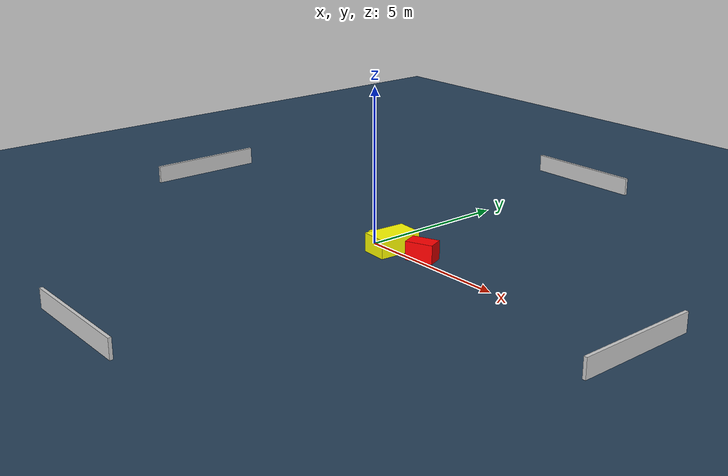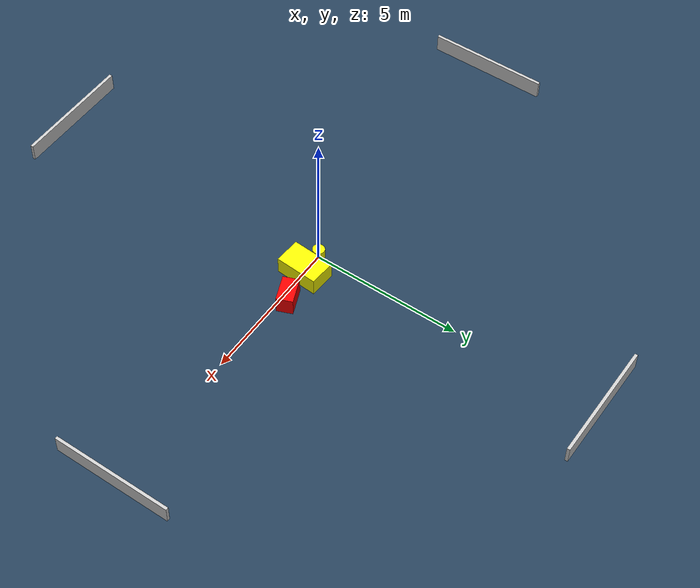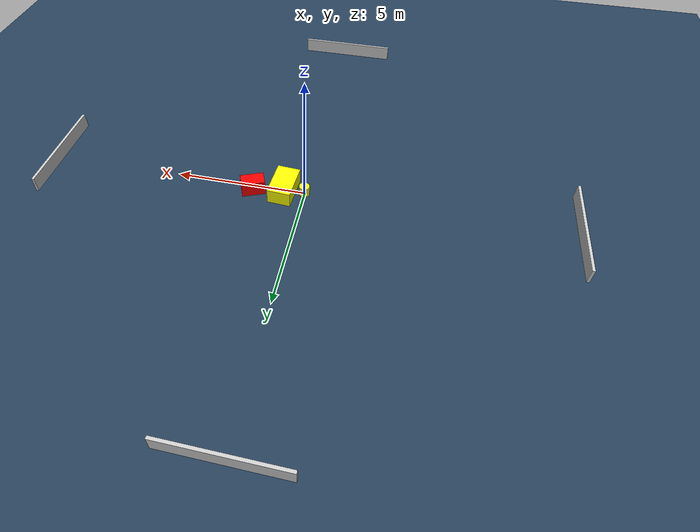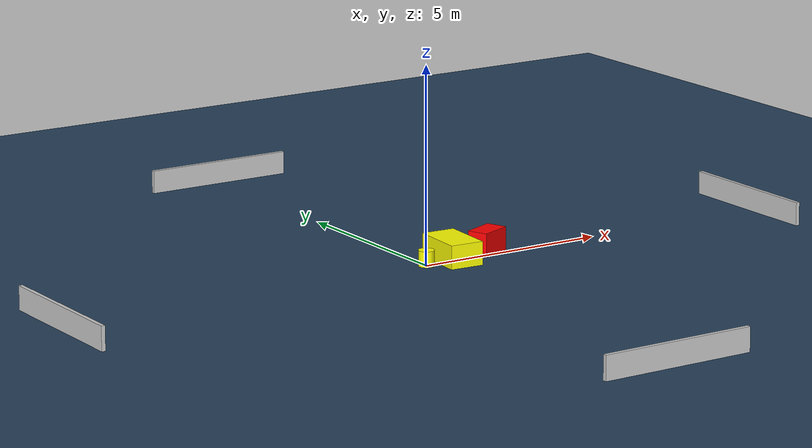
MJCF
<?xml version="1.0" ?>
<mujoco model="generated_environment">
  <option timestep="0.01" integrator="RK4" cone="elliptic"/>
  <default>
    <geom density="1"/>
  </default>
  <asset>
    <texture builtin="gradient" height="3072" name="skybox" rgb1="0.3 0.5 0.7" rgb2="0 0 0" type="skybox" width="512"/>
    <texture builtin="checker" height="300" name="groundplane" rgb1="0.2 0.3 0.4" rgb2="0.1 0.2 0.3" type="2d" width="300"/>
    <material name="groundplane" reflectance="0.2" texrepeat="5 5" texture="groundplane"/>
  </asset>
  <worldbody>
    <light dir="0 0 -1" directional="true" pos="0 0 1.5"/>
    <geom condim="3" friction="0.5 0.005 0.001" material="groundplane" name="floor" pos="0 0 0" size="0 0 0.05" type="plane"/>
    <body name="walls">
      <geom name="wall_1" condim="4" pos="-10.0 0.0 0.3" rgba="0.800000011920929 0.800000011920929 0.800000011920929 1.0" size="0.05 2.0 0.3" type="box"/>
      <geom name="wall_2" condim="4" pos="10.0 0.0 0.3" rgba="0.800000011920929 0.800000011920929 0.800000011920929 1.0" size="0.05 2.0 0.3" type="box"/>
      <geom name="wall_3" condim="4" pos="0.0 -10.0 0.3" rgba="0.800000011920929 0.800000011920929 0.800000011920929 1.0" size="2.0 0.05 0.3" type="box"/>
      <geom name="wall_4" condim="4" pos="0.0 10.0 0.3" rgba="0.800000011920929 0.800000011920929 0.800000011920929 1.0" size="2.0 0.05 0.3" type="box"/>
    </body>
    <body name="robot">
      <joint name="joint_x" type="slide" pos="0 0 0" axis="1 0 0"/>
      <joint name="joint_y" type="slide" pos="0 0 0" axis="0 1 0"/>
      <geom name="robot" type="cylinder" pos="0.0 0.0 0.2" size="0.2 0.2 0.0" mass="5.0" friction="1.0 0.005 0.0001" condim="4" rgba="1.0 1.0 0.0 1.0"/>
    </body>
    <body name="obstacle_1_movable">
      <geom name="obstacle_1_movable" condim="4" pos="0.7844372448732229 0.031242337689769247 0.3" euler="0 0 266.3299489401032" friction="0.0 0.005 0.001" rgba="1.0 1.0 0.0 1.0" size="0.7066207903245318 0.4396217864518378 0.3" type="box" mass="0.1"/>
      <joint type="free"/>
    </body>
    <body name="obstacle_2_static">
      <geom name="obstacle_2_static" condim="4" pos="1.9487667726052103 0.23208608943569808 0.3" euler="0 0 22.084299379681596" friction="0.0 0.005 0.001" rgba="1.0 0.0 0.0 1.0" size="0.4412574023124116 0.26854004227331546 0.3" type="box"/>
    </body>
  </worldbody>
  <actuator>
    <motor name="actuator_x" joint="joint_x" gear="1" ctrlrange="-1 1"/>
    <motor name="actuator_y" joint="joint_y" gear="1" ctrlrange="-1 1"/>
  </actuator>
</mujoco>
